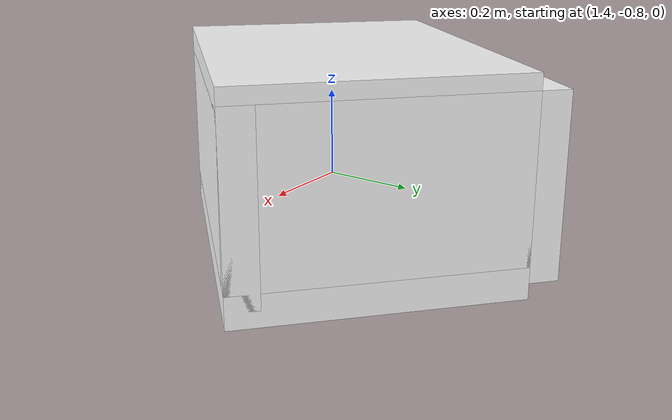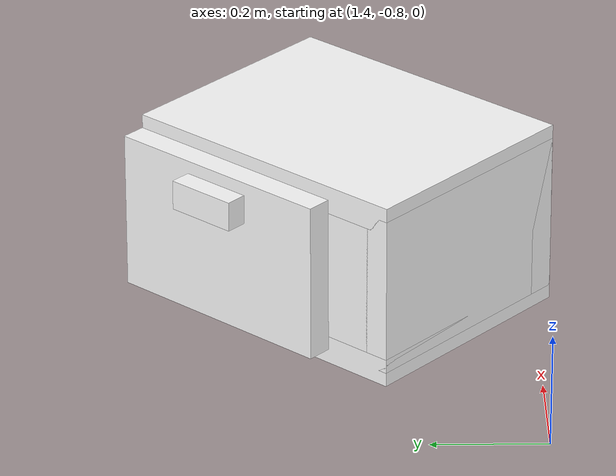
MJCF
<mujoco model="cabinet">
    <compiler angle="radian" eulerseq='zxy' />
    <option gravity = "0 0 0" />
    <option>
        <flag contact = "disable"/>
    </option>
    <statistic	extent="1.0" center="0.0 0.0 0.0"/>
    <visual>
        <map fogstart="3" fogend="5" force="0.1" znear=" 0.100000 " zfar=" 12.000000 "/>
    </visual>
    <size njmax="500" nconmax="100" />
    <actuator>
        <velocity joint="bottom_left_hinge" name="viva_revolution" kv='10'></velocity>
    </actuator>
    <asset>
        <texture builtin="flat" name="tabletex" height="32" width="32" rgb1="1 1 1" type="cube"></texture>
        <texture builtin="flat" name="objtex" height="32" width="32" rgb1="1 1 1" type="cube"></texture>
        <texture builtin="flat" name="handletex" height="32" width="32" rgb1="1 1 1" type="cube"></texture>
        <texture builtin="flat" name="wallpaper" height="32" width="32" rgb1="1 1 1" type="cube"></texture>
        <texture builtin="flat" name="kp" height="32" width="32" rgb1="1 1 1" type="cube"></texture>
        <material name="geomTable" shininess="0.03" specular="0.75" texture="tabletex"></material>
        <material name="geomObj" shininess="0.03" specular="0.75" texture="objtex"></material>
        <material name="geomHandle" shininess="0.03" specular="0.75" texture="handletex"></material>
        <material name="bg" shininess="0.03" specular="0.75" texture="wallpaper"></material>
        <material name="geomKeypad" shininess="0.03" specular="0.75" texture="kp"></material>
    </asset>
    <worldbody>
        <body name="cabinet_bottom" pos= " 1.840333 -0.473470 0.084236 "  quat= " 0.363671 0.000000 0.000000 0.931527" >
            <inertial pos="0 0 0" mass="1" diaginertia="1 1 1" />
            <geom size= " 0.215780 0.276106 0.024695 "  type="box" material="geomObj" name="b"/>
            <body name="cabinet_left" pos= " 0.000000 -0.251411 0.140055 " >
                <inertial pos="0 0 0" mass="1" diaginertia="1 1 1" />
                <geom size= " 0.215780 0.024695 0.140055 "  type="box" material="geomObj" name="c" />
            </body>
            <body name="cabinet_right" pos= " 0.000000 0.251411 0.140055 " >
                <inertial pos="0 0 0" mass="1" diaginertia="1 1 1" />
                <geom size= " 0.215780 0.024695 0.140055 "  type="box" material="geomObj" name="d" />
            </body>
            <body name="cabinet_top" pos= " 0.000000 0.000000 0.280109 " >
                <inertial pos="0 0 0" mass="1" diaginertia="1 1 1" />
                <geom size= " 0.215780 0.276106 0.024695 "  type="box" material="geomObj" name="e"/>
            </body>
            <body name="cabinet_back" pos= " -0.191085 0.000000 0.140055 "  >
                <inertial pos="0 0 0" mass="1" diaginertia="1 1 1" />
                <geom size= " 0.024695 0.276106 0.140055 "  type="box" material="geomObj" name="f" />
            </body>
            <body name="cabinet_keypad" pos= " 0.024695 0.211098 0.140055 " >
                <inertial pos="0 0 0" mass="1" diaginertia="1 1 1" />
                <geom size= " 0.191085 0.064008 0.115359 "  type="box" material="geomKeypad" name="keypizzlemynizzle" />
            </body>
            <body name="cabinet_left_hinge" pos= " 0.215780 -0.064008 0.000000 " >
                <inertial pos= " 0.020000 0.000000 0.140055 "  mass="1" diaginertia="1 1 1" />
                <joint name="bottom_left_hinge" type="hinge" pos="0 0 0" axis="0 1 0" limited="true" range= "0 2.3"  />
                <geom size= " 0.024695 0.212098 0.140055 "  pos= " 0.020000 0.000000 0.140055 "  type="box" material="geomObj" name="g"/>
                <body name="handle_link" pos= " 0.053945 0.000000 0.230719 " >
                    <inertial pos="0 0 0" mass="1" diaginertia="1 1 1" />
                    <geom size= " 0.029106 0.064008 0.026191 "  type="box" material="geomHandle" name="h"/>
                </body>
            </body>
        </body>
        <body name="external_camera_body_0" pos="0.0 0 0.00">
            <camera euler="-1.57 1.57 0.0" fovy=" 54.280851 " name="external_camera_0" pos="0.0 0 0"></camera>
            <inertial pos= " 0.00 0.0 0.000000 " mass="1" diaginertia="1 1 1" />
            <joint name="cam_j" pos="0.0 0 0" axis = "1 0 0" type="free" />
        </body>
    </worldbody>
</mujoco>
